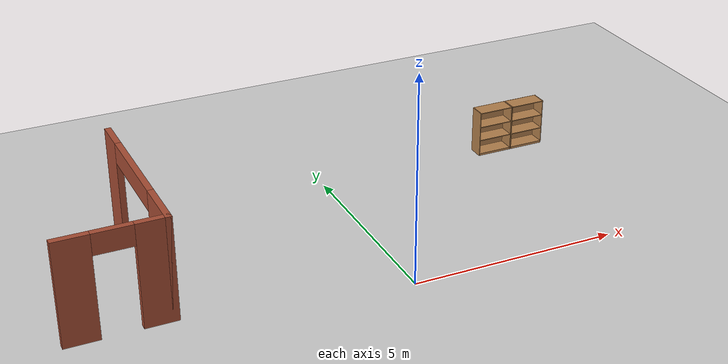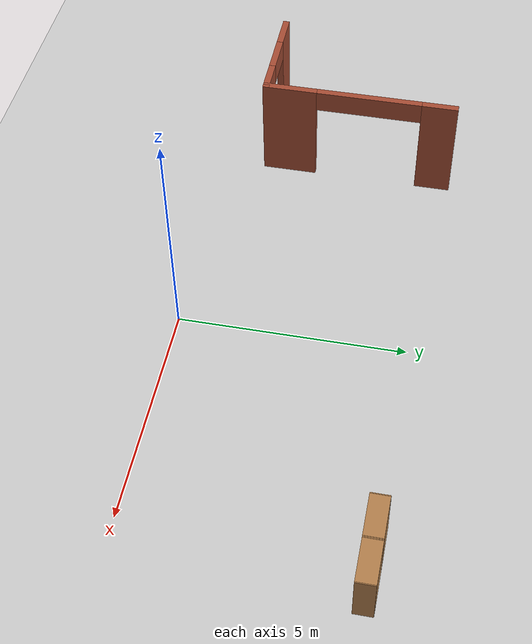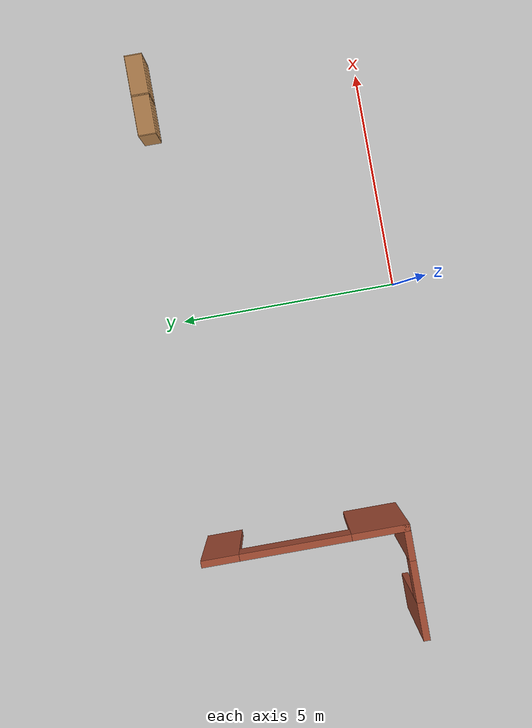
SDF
<sdf version="1.7">
 <world name="simple_house">
  <model name="ground_plane">
   <static>1</static>
   <link name="link">
    <collision name="collision">
     <geometry><plane><normal>0 0 1</normal><size>100 100</size></plane></geometry>
     <surface><friction><ode><mu>100</mu><mu2>50</mu2></ode></friction></surface>
    </collision>
    <visual name="visual">
     <cast_shadows>0</cast_shadows>
     <geometry><plane><normal>0 0 1</normal><size>100 100</size></plane></geometry>
     <material>
      <script><uri>file://media/materials/scripts/gazebo.material</uri><name>Gazebo/Grey</name></script>
     </material>
    </visual>
   </link>
  </model>
  <model name="Wall_98">
   <static>1</static>
   <link name="Wall_98_link">
    <pose>-6.325 0.925 0 0 -0 0</pose>
    <visual name="Wall_98_Visual_2">
     <pose>0.015777 0 2.25 0 -0 0</pose>
     <geometry><box><size>0.9 0.15 0.5</size></box></geometry>
     <material>
      <script><uri>file://media/materials/scripts/gazebo.material</uri><name>Gazebo/Bricks</name></script>
      <ambient>1 1 1 1</ambient>
      <diffuse>1 1 1 1</diffuse>
      <specular>0.2 0.2 0.2 1</specular>
      <emissive>0 0 0 1</emissive>
     </material>
    </visual>
    <visual name="Wall_98_Visual_1">
     <pose>0.857889 0 1.25 0 -0 0</pose>
     <geometry><box><size>0.784223 0.15 2.5</size></box></geometry>
     <material>
      <script><uri>file://media/materials/scripts/gazebo.material</uri><name>Gazebo/Bricks</name></script>
      <ambient>1 1 1 1</ambient>
      <diffuse>1 1 1 1</diffuse>
      <specular>0.2 0.2 0.2 1</specular>
      <emissive>0 0 0 1</emissive>
     </material>
    </visual>
    <visual name="Wall_98_Visual_0">
     <pose>-0.842111 0 1.25 0 -0 0</pose>
     <geometry><box><size>0.815777 0.15 2.5</size></box></geometry>
     <material>
      <script><uri>file://media/materials/scripts/gazebo.material</uri><name>Gazebo/Bricks</name></script>
      <ambient>1 1 1 1</ambient>
      <diffuse>1 1 1 1</diffuse>
      <specular>0.2 0.2 0.2 1</specular>
      <emissive>0 0 0 1</emissive>
     </material>
    </visual>
    <collision name="Wall_98_Collision_0">
     <pose>-0.842111 0 1.25 0 -0 0</pose>
     <geometry><box><size>0.815777 0.15 2.5</size></box></geometry>
     <surface>
      <friction>
       <ode><mu>1</mu><mu2>1</mu2><fdir1>0 0 0</fdir1><slip1>0</slip1><slip2>0</slip2></ode>
       <torsional>
        <coefficient>1</coefficient>
        <patch_radius>0</patch_radius>
        <surface_radius>0</surface_radius>
        <use_patch_radius>1</use_patch_radius>
        <ode><slip>0</slip></ode>
       </torsional>
      </friction>
      <bounce><restitution_coefficient>0</restitution_coefficient><threshold>1e+06</threshold></bounce>
      <contact>
       <collide_without_contact>0</collide_without_contact>
       <collide_without_contact_bitmask>1</collide_without_contact_bitmask>
       <collide_bitmask>1</collide_bitmask>
       <ode>
        <soft_cfm>0</soft_cfm>
        <soft_erp>0.2</soft_erp>
        <kp>1e+13</kp>
        <kd>1</kd>
        <max_vel>0.01</max_vel>
        <min_depth>0</min_depth>
       </ode>
       <bullet>
        <split_impulse>1</split_impulse>
        <split_impulse_penetration_threshold>-0.01</split_impulse_penetration_threshold>
        <soft_cfm>0</soft_cfm>
        <soft_erp>0.2</soft_erp>
        <kp>1e+13</kp>
        <kd>1</kd>
       </bullet>
      </contact>
     </surface>
    </collision>
    <collision name="Wall_98_Collision_1">
     <pose>0.857889 0 1.25 0 -0 0</pose>
     <geometry><box><size>0.784223 0.15 2.5</size></box></geometry>
     <surface>
      <friction>
       <ode><mu>1</mu><mu2>1</mu2><fdir1>0 0 0</fdir1><slip1>0</slip1><slip2>0</slip2></ode>
       <torsional>
        <coefficient>1</coefficient>
        <patch_radius>0</patch_radius>
        <surface_radius>0</surface_radius>
        <use_patch_radius>1</use_patch_radius>
        <ode><slip>0</slip></ode>
       </torsional>
      </friction>
      <bounce><restitution_coefficient>0</restitution_coefficient><threshold>1e+06</threshold></bounce>
      <contact>
       <collide_without_contact>0</collide_without_contact>
       <collide_without_contact_bitmask>1</collide_without_contact_bitmask>
       <collide_bitmask>1</collide_bitmask>
       <ode>
        <soft_cfm>0</soft_cfm>
        <soft_erp>0.2</soft_erp>
        <kp>1e+13</kp>
        <kd>1</kd>
        <max_vel>0.01</max_vel>
        <min_depth>0</min_depth>
       </ode>
       <bullet>
        <split_impulse>1</split_impulse>
        <split_impulse_penetration_threshold>-0.01</split_impulse_penetration_threshold>
        <soft_cfm>0</soft_cfm>
        <soft_erp>0.2</soft_erp>
        <kp>1e+13</kp>
        <kd>1</kd>
       </bullet>
      </contact>
     </surface>
    </collision>
    <collision name="Wall_98_Collision_2">
     <pose>0.015777 0 2.25 0 -0 0</pose>
     <geometry><box><size>0.9 0.15 0.5</size></box></geometry>
     <surface>
      <friction>
       <ode><mu>1</mu><mu2>1</mu2><fdir1>0 0 0</fdir1><slip1>0</slip1><slip2>0</slip2></ode>
       <torsional>
        <coefficient>1</coefficient>
        <patch_radius>0</patch_radius>
        <surface_radius>0</surface_radius>
        <use_patch_radius>1</use_patch_radius>
        <ode><slip>0</slip></ode>
       </torsional>
      </friction>
      <bounce><restitution_coefficient>0</restitution_coefficient><threshold>1e+06</threshold></bounce>
      <contact>
       <collide_without_contact>0</collide_without_contact>
       <collide_without_contact_bitmask>1</collide_without_contact_bitmask>
       <collide_bitmask>1</collide_bitmask>
       <ode>
        <soft_cfm>0</soft_cfm>
        <soft_erp>0.2</soft_erp>
        <kp>1e+13</kp>
        <kd>1</kd>
        <max_vel>0.01</max_vel>
        <min_depth>0</min_depth>
       </ode>
       <bullet>
        <split_impulse>1</split_impulse>
        <split_impulse_penetration_threshold>-0.01</split_impulse_penetration_threshold>
        <soft_cfm>0</soft_cfm>
        <soft_erp>0.2</soft_erp>
        <kp>1e+13</kp>
        <kd>1</kd>
       </bullet>
      </contact>
     </surface>
    </collision>
   </link>
  </model>
  <model name="Wall_99">
   <static>1</static>
   <link name="Wall_99_link">
    <pose>-5.15 3.1 0 0 -0 1.5708</pose>
    <visual name="Wall_99_Visual_0">
     <pose>-1.62116 0 1.25 0 -0 0</pose>
     <geometry><box><size>1.25768 0.15 2.5</size></box></geometry>
     <material>
      <script><uri>file://media/materials/scripts/gazebo.material</uri><name>Gazebo/Bricks</name></script>
      <ambient>1 1 1 1</ambient>
      <diffuse>1 1 1 1</diffuse>
      <specular>0.2 0.2 0.2 1</specular>
      <emissive>0 0 0 1</emissive>
     </material>
    </visual>
    <visual name="Wall_99_Visual_2">
     <pose>0.215786 0 2.25 0 -0 0</pose>
     <geometry><box><size>2.41621 0.15 0.5</size></box></geometry>
     <material>
      <script><uri>file://media/materials/scripts/gazebo.material</uri><name>Gazebo/Bricks</name></script>
      <ambient>1 1 1 1</ambient>
      <diffuse>1 1 1 1</diffuse>
      <specular>0.2 0.2 0.2 1</specular>
      <emissive>0 0 0 1</emissive>
     </material>
    </visual>
    <visual name="Wall_99_Visual_1">
     <pose>1.83695 0 1.25 0 -0 0</pose>
     <geometry><box><size>0.826108 0.15 2.5</size></box></geometry>
     <material>
      <script><uri>file://media/materials/scripts/gazebo.material</uri><name>Gazebo/Bricks</name></script>
      <ambient>1 1 1 1</ambient>
      <diffuse>1 1 1 1</diffuse>
      <specular>0.2 0.2 0.2 1</specular>
      <emissive>0 0 0 1</emissive>
     </material>
    </visual>
    <collision name="Wall_99_Collision_0">
     <pose>-1.62116 0 1.25 0 -0 0</pose>
     <geometry><box><size>1.25768 0.15 2.5</size></box></geometry>
     <surface>
      <friction>
       <ode><mu>1</mu><mu2>1</mu2><fdir1>0 0 0</fdir1><slip1>0</slip1><slip2>0</slip2></ode>
       <torsional>
        <coefficient>1</coefficient>
        <patch_radius>0</patch_radius>
        <surface_radius>0</surface_radius>
        <use_patch_radius>1</use_patch_radius>
        <ode><slip>0</slip></ode>
       </torsional>
      </friction>
      <bounce><restitution_coefficient>0</restitution_coefficient><threshold>1e+06</threshold></bounce>
      <contact>
       <collide_without_contact>0</collide_without_contact>
       <collide_without_contact_bitmask>1</collide_without_contact_bitmask>
       <collide_bitmask>1</collide_bitmask>
       <ode>
        <soft_cfm>0</soft_cfm>
        <soft_erp>0.2</soft_erp>
        <kp>1e+13</kp>
        <kd>1</kd>
        <max_vel>0.01</max_vel>
        <min_depth>0</min_depth>
       </ode>
       <bullet>
        <split_impulse>1</split_impulse>
        <split_impulse_penetration_threshold>-0.01</split_impulse_penetration_threshold>
        <soft_cfm>0</soft_cfm>
        <soft_erp>0.2</soft_erp>
        <kp>1e+13</kp>
        <kd>1</kd>
       </bullet>
      </contact>
     </surface>
    </collision>
    <collision name="Wall_99_Collision_1">
     <pose>1.83695 0 1.25 0 -0 0</pose>
     <geometry><box><size>0.826108 0.15 2.5</size></box></geometry>
     <surface>
      <friction>
       <ode><mu>1</mu><mu2>1</mu2><fdir1>0 0 0</fdir1><slip1>0</slip1><slip2>0</slip2></ode>
       <torsional>
        <coefficient>1</coefficient>
        <patch_radius>0</patch_radius>
        <surface_radius>0</surface_radius>
        <use_patch_radius>1</use_patch_radius>
        <ode><slip>0</slip></ode>
       </torsional>
      </friction>
      <bounce><restitution_coefficient>0</restitution_coefficient><threshold>1e+06</threshold></bounce>
      <contact>
       <collide_without_contact>0</collide_without_contact>
       <collide_without_contact_bitmask>1</collide_without_contact_bitmask>
       <collide_bitmask>1</collide_bitmask>
       <ode>
        <soft_cfm>0</soft_cfm>
        <soft_erp>0.2</soft_erp>
        <kp>1e+13</kp>
        <kd>1</kd>
        <max_vel>0.01</max_vel>
        <min_depth>0</min_depth>
       </ode>
       <bullet>
        <split_impulse>1</split_impulse>
        <split_impulse_penetration_threshold>-0.01</split_impulse_penetration_threshold>
        <soft_cfm>0</soft_cfm>
        <soft_erp>0.2</soft_erp>
        <kp>1e+13</kp>
        <kd>1</kd>
       </bullet>
      </contact>
     </surface>
    </collision>
    <collision name="Wall_99_Collision_2">
     <pose>0.215786 0 2.25 0 -0 0</pose>
     <geometry><box><size>2.41621 0.15 0.5</size></box></geometry>
     <surface>
      <friction>
       <ode><mu>1</mu><mu2>1</mu2><fdir1>0 0 0</fdir1><slip1>0</slip1><slip2>0</slip2></ode>
       <torsional>
        <coefficient>1</coefficient>
        <patch_radius>0</patch_radius>
        <surface_radius>0</surface_radius>
        <use_patch_radius>1</use_patch_radius>
        <ode><slip>0</slip></ode>
       </torsional>
      </friction>
      <bounce><restitution_coefficient>0</restitution_coefficient><threshold>1e+06</threshold></bounce>
      <contact>
       <collide_without_contact>0</collide_without_contact>
       <collide_without_contact_bitmask>1</collide_without_contact_bitmask>
       <collide_bitmask>1</collide_bitmask>
       <ode>
        <soft_cfm>0</soft_cfm>
        <soft_erp>0.2</soft_erp>
        <kp>1e+13</kp>
        <kd>1</kd>
        <max_vel>0.01</max_vel>
        <min_depth>0</min_depth>
       </ode>
       <bullet>
        <split_impulse>1</split_impulse>
        <split_impulse_penetration_threshold>-0.01</split_impulse_penetration_threshold>
        <soft_cfm>0</soft_cfm>
        <soft_erp>0.2</soft_erp>
        <kp>1e+13</kp>
        <kd>1</kd>
       </bullet>
      </contact>
     </surface>
    </collision>
   </link>
  </model>
  <model name="bookshelf_0">
   <static>1</static>
   <link name="link">
    <inertial><mass>1</mass></inertial>
    <collision name="back">
     <pose>0 0.005 0.6 0 -0 0</pose>
     <geometry><box><size>0.9 0.01 1.2</size></box></geometry>
    </collision>
    <visual name="visual1">
     <pose>0 0.005 0.6 0 -0 0</pose>
     <geometry><box><size>0.9 0.01 1.2</size></box></geometry>
     <material>
      <script><uri>file://media/materials/scripts/gazebo.material</uri><name>Gazebo/Wood</name></script>
     </material>
    </visual>
    <collision name="left_side">
     <pose>0.45 -0.195 0.6 0 -0 0</pose>
     <geometry><box><size>0.02 0.4 1.2</size></box></geometry>
    </collision>
    <visual name="visual2">
     <pose>0.45 -0.195 0.6 0 -0 0</pose>
     <geometry><box><size>0.02 0.4 1.2</size></box></geometry>
     <material>
      <script><uri>file://media/materials/scripts/gazebo.material</uri><name>Gazebo/Wood</name></script>
     </material>
    </visual>
    <collision name="right_side">
     <pose>-0.45 -0.195 0.6 0 -0 0</pose>
     <geometry><box><size>0.02 0.4 1.2</size></box></geometry>
    </collision>
    <visual name="visual3">
     <pose>-0.45 -0.195 0.6 0 -0 0</pose>
     <geometry><box><size>0.02 0.4 1.2</size></box></geometry>
     <material>
      <script><uri>file://media/materials/scripts/gazebo.material</uri><name>Gazebo/Wood</name></script>
     </material>
    </visual>
    <collision name="bottom">
     <pose>0 -0.195 0.03 0 -0 0</pose>
     <geometry><box><size>0.88 0.4 0.06</size></box></geometry>
    </collision>
    <visual name="visual4">
     <pose>0 -0.195 0.03 0 -0 0</pose>
     <geometry><box><size>0.88 0.4 0.06</size></box></geometry>
     <material>
      <script><uri>file://media/materials/scripts/gazebo.material</uri><name>Gazebo/Wood</name></script>
     </material>
    </visual>
    <collision name="top">
     <pose>0 -0.195 1.19 0 -0 0</pose>
     <geometry><box><size>0.88 0.4 0.02</size></box></geometry>
    </collision>
    <visual name="visual5">
     <pose>0 -0.195 1.19 0 -0 0</pose>
     <geometry><box><size>0.88 0.4 0.02</size></box></geometry>
     <material>
      <script><uri>file://media/materials/scripts/gazebo.material</uri><name>Gazebo/Wood</name></script>
     </material>
    </visual>
    <collision name="low_shelf">
     <pose>0 -0.195 0.43 0 -0 0</pose>
     <geometry><box><size>0.88 0.4 0.02</size></box></geometry>
    </collision>
    <visual name="visual6">
     <pose>0 -0.195 0.43 0 -0 0</pose>
     <geometry><box><size>0.88 0.4 0.02</size></box></geometry>
     <material>
      <script><uri>file://media/materials/scripts/gazebo.material</uri><name>Gazebo/Wood</name></script>
     </material>
    </visual>
    <collision name="high_shelf">
     <pose>0 -0.195 0.8 0 -0 0</pose>
     <geometry><box><size>0.88 0.4 0.02</size></box></geometry>
    </collision>
    <visual name="visual7">
     <pose>0 -0.195 0.8 0 -0 0</pose>
     <geometry><box><size>0.88 0.4 0.02</size></box></geometry>
     <material>
      <script><uri>file://media/materials/scripts/gazebo.material</uri><name>Gazebo/Wood</name></script>
     </material>
    </visual>
   </link>
   <pose>4.72359 5.17921 0 0 -0 0</pose>
  </model>
  <model name="bookshelf_1">
   <static>1</static>
   <link name="link">
    <inertial><mass>1</mass></inertial>
    <collision name="back">
     <pose>0 0.005 0.6 0 -0 0</pose>
     <geometry><box><size>0.9 0.01 1.2</size></box></geometry>
    </collision>
    <visual name="visual1">
     <pose>0 0.005 0.6 0 -0 0</pose>
     <geometry><box><size>0.9 0.01 1.2</size></box></geometry>
     <material>
      <script><uri>file://media/materials/scripts/gazebo.material</uri><name>Gazebo/Wood</name></script>
     </material>
    </visual>
    <collision name="left_side">
     <pose>0.45 -0.195 0.6 0 -0 0</pose>
     <geometry><box><size>0.02 0.4 1.2</size></box></geometry>
    </collision>
    <visual name="visual2">
     <pose>0.45 -0.195 0.6 0 -0 0</pose>
     <geometry><box><size>0.02 0.4 1.2</size></box></geometry>
     <material>
      <script><uri>file://media/materials/scripts/gazebo.material</uri><name>Gazebo/Wood</name></script>
     </material>
    </visual>
    <collision name="right_side">
     <pose>-0.45 -0.195 0.6 0 -0 0</pose>
     <geometry><box><size>0.02 0.4 1.2</size></box></geometry>
    </collision>
    <visual name="visual3">
     <pose>-0.45 -0.195 0.6 0 -0 0</pose>
     <geometry><box><size>0.02 0.4 1.2</size></box></geometry>
     <material>
      <script><uri>file://media/materials/scripts/gazebo.material</uri><name>Gazebo/Wood</name></script>
     </material>
    </visual>
    <collision name="bottom">
     <pose>0 -0.195 0.03 0 -0 0</pose>
     <geometry><box><size>0.88 0.4 0.06</size></box></geometry>
    </collision>
    <visual name="visual4">
     <pose>0 -0.195 0.03 0 -0 0</pose>
     <geometry><box><size>0.88 0.4 0.06</size></box></geometry>
     <material>
      <script><uri>file://media/materials/scripts/gazebo.material</uri><name>Gazebo/Wood</name></script>
     </material>
    </visual>
    <collision name="top">
     <pose>0 -0.195 1.19 0 -0 0</pose>
     <geometry><box><size>0.88 0.4 0.02</size></box></geometry>
    </collision>
    <visual name="visual5">
     <pose>0 -0.195 1.19 0 -0 0</pose>
     <geometry><box><size>0.88 0.4 0.02</size></box></geometry>
     <material>
      <script><uri>file://media/materials/scripts/gazebo.material</uri><name>Gazebo/Wood</name></script>
     </material>
    </visual>
    <collision name="low_shelf">
     <pose>0 -0.195 0.43 0 -0 0</pose>
     <geometry><box><size>0.88 0.4 0.02</size></box></geometry>
    </collision>
    <visual name="visual6">
     <pose>0 -0.195 0.43 0 -0 0</pose>
     <geometry><box><size>0.88 0.4 0.02</size></box></geometry>
     <material>
      <script><uri>file://media/materials/scripts/gazebo.material</uri><name>Gazebo/Wood</name></script>
     </material>
    </visual>
    <collision name="high_shelf">
     <pose>0 -0.195 0.8 0 -0 0</pose>
     <geometry><box><size>0.88 0.4 0.02</size></box></geometry>
    </collision>
    <visual name="visual7">
     <pose>0 -0.195 0.8 0 -0 0</pose>
     <geometry><box><size>0.88 0.4 0.02</size></box></geometry>
     <material>
      <script><uri>file://media/materials/scripts/gazebo.material</uri><name>Gazebo/Wood</name></script>
     </material>
    </visual>
   </link>
   <pose>5.64449 5.17912 0 0 -0 0</pose>
  </model>
 </world>
</sdf>
